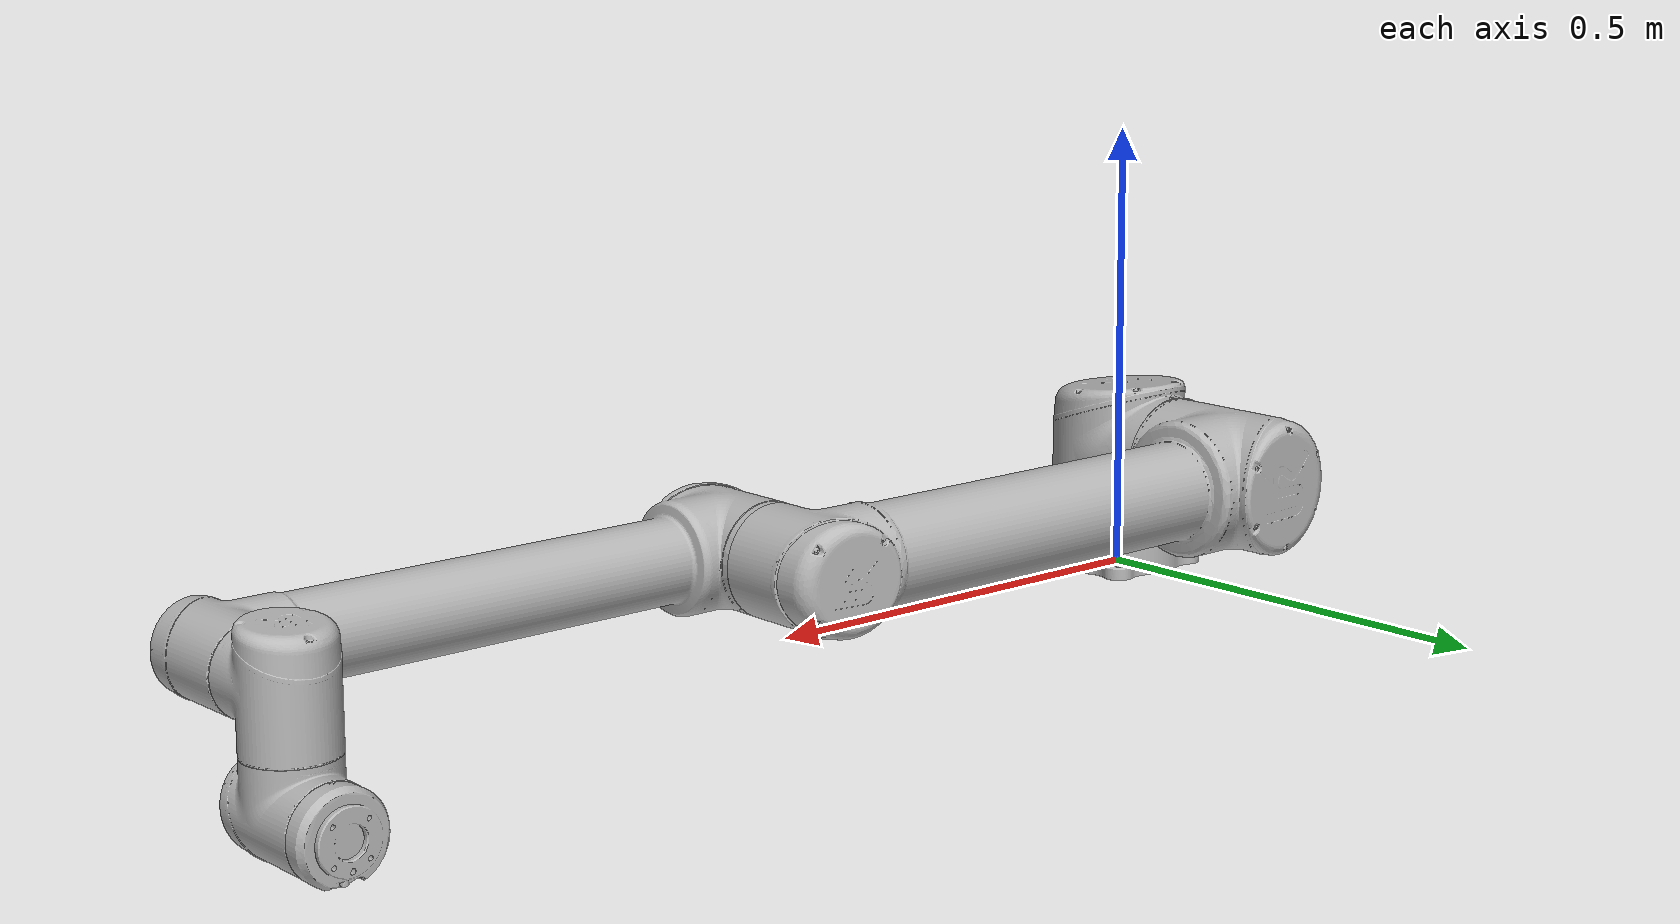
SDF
<?xml version='1.0'?>
<sdf version='1.7'>
  <model name='ur10'>
    <link name='base'>
      <inertial>
        <mass>4</mass>
        <inertia>
          <ixx>0.00610633</ixx>
          <ixy>0</ixy>
          <ixz>0</ixz>
          <iyy>0.00610633</iyy>
          <iyz>0</iyz>
          <izz>0.01125</izz>
        </inertia>
      </inertial>
      <collision name='collision'>
      <pose>0 0 0.019 0 -0 0</pose>
        <geometry>
          <cylinder>
            <radius>0.075</radius>
            <length>0.038</length>
          </cylinder>
        </geometry>
      </collision>
      <visual name='visual'>
        <geometry>
          <mesh>
            <uri>package://ur10_description/meshes/base.obj</uri>
          </mesh>
        </geometry>
      </visual>
    </link>
    <link name='shoulder'>
      <pose>0 0 .1273 0 -0 0</pose>
      <inertial>
        <mass>7.778</mass>
        <inertia>
          <ixx>0.0314743</ixx>
          <ixy>0</ixy>
          <ixz>0</ixz>
          <iyy>0.0314743</iyy>
          <iyz>0</iyz>
          <izz>0.0218756</izz>
        </inertia>
      </inertial>
      <collision name='collision'>
        <geometry>
          <cylinder>
            <radius>0.075</radius>
            <length>0.177</length>
          </cylinder>
        </geometry>
      </collision>
      <visual name='visual'>
        <geometry>
          <mesh>
            <uri>package://ur10_description/meshes/shoulder.obj</uri>
          </mesh>
        </geometry>
      </visual>
    </link>

    <link name='upper_arm'>
      <pose>0 0.220941 0.1273 3.14159 1.57079 3.14159</pose>
      <inertial>
        <pose>0 0 0.306 0 0 0</pose>
        <mass>12.93</mass>
        <inertia>
          <ixx>0.421754</ixx>
          <ixy>0</ixy>
          <ixz>0</ixz>
          <iyy>0.421754</iyy>
          <iyz>0</iyz>
          <izz>0.0363656</izz>
        </inertia>
      </inertial>

      <collision name='collision1'>
        <pose>0 -0.045 0 1.5707 0 0</pose>
        <geometry>
          <cylinder>
            <radius>0.075</radius>
            <length>0.177</length>
          </cylinder>
        </geometry>
      </collision>

      <collision name='collision2'>
        <pose>0 -0.0436 0.32 0 0 1.5707</pose>
        <geometry>
          <cylinder>
            <radius>0.058</radius>
            <length>0.461</length>
          </cylinder>
        </geometry>
      </collision>

      <collision name='collision3'>
        <pose>0 -0.040 0.613 1.5707 0 0</pose>
        <geometry>
          <cylinder>
            <radius>0.058</radius>
            <length>0.129</length>
          </cylinder>
        </geometry>
      </collision>

      <visual name='visual'>
        <geometry>
          <mesh>
            <uri>package://ur10_description/meshes/upperarm.obj</uri>
          </mesh>
        </geometry>
      </visual>
    </link>

    <link name='forearm'>
      <pose>0.612 0.049041 0.1273 3.14159 1.57079 3.14159</pose>
      <inertial>
        <pose>0 0 0.28615 0 -0 0</pose>
        <mass>3.87</mass>
        <inertia>
          <ixx>0.11107</ixx>
          <ixy>0</ixy>
          <ixz>0</ixz>
          <iyy>0.11107</iyy>
          <iyz>0</iyz>
          <izz>0.0108844</izz>
        </inertia>
      </inertial>
      <collision name='collision1'>
        <pose>0 0 0.001 1.5707 0 0</pose>
        <geometry>
          <cylinder>
            <radius>0.058</radius>
            <length>0.136</length>
          </cylinder>
        </geometry>
      </collision>

      <collision name='collision2'>
        <pose>0 0 0.305 0 0 1.5707</pose>
        <geometry>
          <cylinder>
            <radius>0.045</radius>
            <length>0.447</length>
          </cylinder>
        </geometry>
      </collision>

      <collision name='collision3'>
        <pose>0 0.001 0.5735 1.5707 0 0</pose>
        <geometry>
          <cylinder>
            <radius>0.045</radius>
            <length>0.119</length>
          </cylinder>
        </geometry>
      </collision>

      <visual name='visua'>
        <geometry>
          <mesh>
            <uri>package://ur10_description/meshes/forearm.obj</uri>
          </mesh>
        </geometry>
      </visual>
    </link>

    <link name='wrist_1'>
      <pose>1.1843 0.049041 0.1273 3.14159 3.58979e-09 3.14159</pose>
      <inertial>
        <mass>1.96</mass>
        <inertia>
          <ixx>0.00510825</ixx>
          <ixy>0</ixy>
          <ixz>0</ixz>
          <iyy>0.00510825</iyy>
          <iyz>0</iyz>
          <izz>0.0055125</izz>
        </inertia>
      </inertial>
      <collision name='collision'>
        <pose>0 0.115 0.0025 0 0 0</pose>
        <geometry>
          <cylinder>
            <radius>0.0455</radius>
            <length>0.119</length>
          </cylinder>
        </geometry>
      </collision>
      <visual name='visual'>
        <geometry>
          <mesh>
            <uri>package://ur10_description/meshes/wrist1.obj</uri>
          </mesh>
        </geometry>
      </visual>
    </link>

    <link name='wrist_2'>
      <pose>1.1843 0.163941 0.1273 3.14159 3.58979e-09 3.14159</pose>
      <inertial>
        <mass>1.96</mass>
        <inertia>
          <ixx>0.00510825</ixx>
          <ixy>0</ixy>
          <ixz>0</ixz>
          <iyy>0.00510825</iyy>
          <iyz>0</iyz>
          <izz>0.0055125</izz>
        </inertia>
      </inertial>
      <collision name='collision'>
        <pose>0 0.002 0.11659 1.5707 0 0</pose>
        <geometry>
          <cylinder>
            <radius>0.0455</radius>
            <length>0.119</length>
          </cylinder>
        </geometry>
      </collision>
      <visual name='visual'>
        <geometry>
          <mesh>
            <uri>package://ur10_description/meshes/wrist2.obj</uri>
          </mesh>
        </geometry>
      </visual>
    </link>

    <link name='wrist_3'>
      <pose>1.1843 0.163941 0.0116 3.14159 3.58979e-09 3.14159</pose>
      <inertial>
        <mass>0.202</mass>
        <inertia>
          <ixx>0.000526462</ixx>
          <ixy>0</ixy>
          <ixz>0</ixz>
          <iyy>0.000526462</iyy>
          <iyz>0</iyz>
          <izz>0.000568125</izz>
        </inertia>
      </inertial>
      <collision name='collision'>
        <pose>0 0.0765 0 1.5707 0 0</pose>
        <geometry>
          <cylinder>
            <radius>0.045</radius>
            <length>0.031</length>
          </cylinder>
        </geometry>
      </collision>
      <visual name='visual'>
        <geometry>
          <mesh>
            <uri>package://ur10_description/meshes/wrist3.obj</uri>
          </mesh>
        </geometry>
      </visual>
    </link>

    <joint name='shoulder_pan' type='revolute'>
      <child>shoulder</child>
      <parent>base</parent>
      <axis>
        <xyz>0 0 1</xyz>
        <limit>
          <lower>-6.28319</lower>
          <upper>6.28319</upper>
          <effort>330</effort>
          <velocity>2.16</velocity>
        </limit>
        <use_parent_model_frame>1</use_parent_model_frame>
      </axis>
    </joint>

    <joint name='shoulder_lift' type='revolute'>
      <child>upper_arm</child>
      <parent>shoulder</parent>
      <axis>
        <xyz>0 1 0</xyz>
        <limit>
          <lower>-6.28319</lower>
          <upper>6.28319</upper>
          <effort>330</effort>
          <velocity>2.16</velocity>
        </limit>
        <use_parent_model_frame>1</use_parent_model_frame>
      </axis>
    </joint>

    <joint name='elbow' type='revolute'>
      <child>forearm</child>
      <parent>upper_arm</parent>
      <axis>
        <xyz>0 1 0</xyz>
        <limit>
          <lower>-6.28319</lower>
          <upper>6.28319</upper>
          <effort>150</effort>
          <velocity>3.15</velocity>
        </limit>
        <use_parent_model_frame>1</use_parent_model_frame>
      </axis>
    </joint>

    <joint name='wrist_1_joint' type='revolute'>
      <child>wrist_1</child>
      <parent>forearm</parent>
      <axis>
        <xyz>0 1 0</xyz>
        <limit>
          <lower>-6.28319</lower>
          <upper>6.28319</upper>
          <effort>54</effort>
          <velocity>3.2</velocity>
        </limit>
        <use_parent_model_frame>1</use_parent_model_frame>
      </axis>
    </joint>

    <joint name='wrist_2_joint' type='revolute'>
      <child>wrist_2</child>
      <parent>wrist_1</parent>
      <axis>
        <xyz>3.58979e-09 0 -1</xyz>
        <limit>
          <lower>-6.28319</lower>
          <upper>6.28319</upper>
          <effort>54</effort>
          <velocity>3.2</velocity>
        </limit>
        <use_parent_model_frame>1</use_parent_model_frame>
      </axis>
    </joint>

    <joint name='wrist_3_joint' type='revolute'>
      <child>wrist_3</child>
      <parent>wrist_2</parent>
      <axis>
        <xyz>0 1 0</xyz>
        <limit>
          <lower>-6.28319</lower>
          <upper>6.28319</upper>
          <effort>54</effort>
          <velocity>3.2</velocity>
        </limit>
        <use_parent_model_frame>1</use_parent_model_frame>
      </axis>
    </joint>
  </model>
</sdf>
